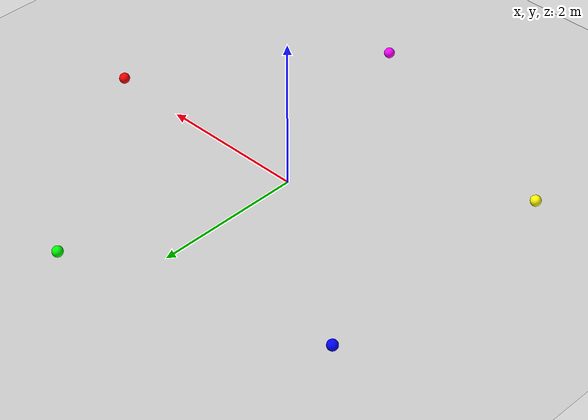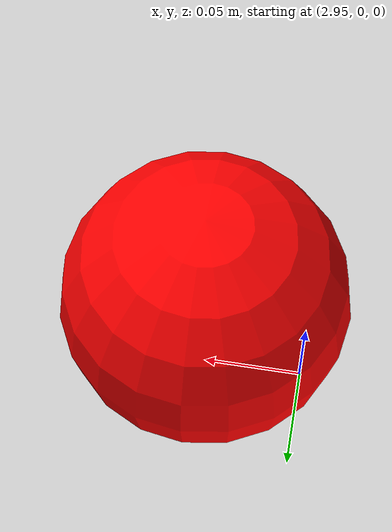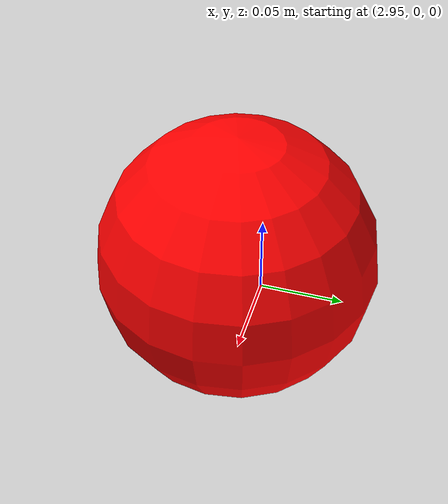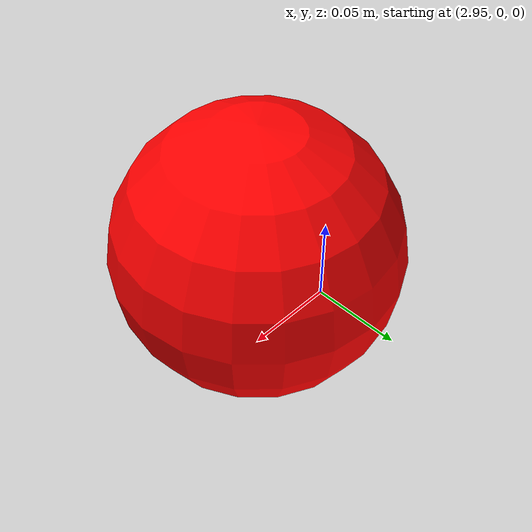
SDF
<?xml version="1.0" ?>
<sdf version="1.10">
  <world name="random_boxes_world">

    <!-- ================= PLUGINS ================= -->
    <plugin filename="gz-sim-physics-system"
            name="gz::sim::systems::Physics"/>

    <plugin filename="gz-sim-user-commands-system"
            name="gz::sim::systems::UserCommands"/>

    <plugin filename="gz-sim-scene-broadcaster-system"
            name="gz::sim::systems::SceneBroadcaster"/>

    <plugin filename="gz-sim-sensors-system"
            name="gz::sim::systems::Sensors">
      <render_engine>ogre2</render_engine>
    </plugin>

    <plugin filename="gz-sim-imu-system"
            name="gz::sim::systems::Imu"/>

    <plugin filename="gz-sim-magnetometer-system"
            name="gz::sim::systems::Magnetometer"/>

    <plugin filename="gz-sim-navsat-system"
            name="gz::sim::systems::NavSat"/>

    <!-- ============ GEOGRAPHIC COORDINATES ============ -->
    <spherical_coordinates>
      <surface_model>EARTH_WGS84</surface_model>
     <latitude_deg>-25.33057507763572</latitude_deg>
     <longitude_deg>-57.51813474688503</longitude_deg>
      <elevation>80.0</elevation>
      <heading_deg>0</heading_deg>
    </spherical_coordinates>

    <!-- ================= PHYSICS ================= -->
    <physics name="1ms" type="ignored">
      <max_step_size>0.001</max_step_size>
      <real_time_factor>1</real_time_factor>
      <real_time_update_rate>1000</real_time_update_rate>
    </physics>

    <gravity>0 0 -9.8</gravity>

    <!-- ================= SCENE ================= -->
    <scene>
      <ambient>0.4 0.4 0.4 1</ambient>
      <background>0.7 0.7 0.7 1</background>
      <shadows>true</shadows>
    </scene>

    <!-- ================= GROUND ================= -->
    <model name="ground_plane">
      <static>true</static>
      <link name="link">
        <collision name="collision">
          <geometry>
            <plane>
              <normal>0 0 1</normal>
              <size>100 100</size>
            </plane>
          </geometry>
        </collision>
        <visual name="visual">
          <geometry>
            <plane>
              <normal>0 0 1</normal>
              <size>100 100</size>
            </plane>
          </geometry>
          <material>
            <diffuse>0.8 0.8 0.8 1</diffuse>
          </material>
        </visual>
      </link>
    </model>

<!-- ================= SPHERES IN PENTAGON ================= -->
    <!-- Sphere radius: 0.07 m -->

    <model name="sphere_01">
      <static>true</static>
      <pose>3 0 0.07 0 0 0</pose>
      <link name="l">
        <collision name="c">
          <geometry><sphere><radius>0.07</radius></sphere></geometry>
        </collision>
        <visual name="v">
          <geometry><sphere><radius>0.07</radius></sphere></geometry>
          <material><ambient>1 0 0 1</ambient><diffuse>1 0 0 1</diffuse></material>
        </visual>
      </link>
    </model>

    <model name="sphere_02">
      <static>true</static>
      <pose>0.93 2.85 0.07 0 0 0</pose>
      <link name="l">
        <collision name="c">
          <geometry><sphere><radius>0.07</radius></sphere></geometry>
        </collision>
        <visual name="v">
          <geometry><sphere><radius>0.07</radius></sphere></geometry>
          <material><ambient>0 1 0 1</ambient><diffuse>0 1 0 1</diffuse></material>
        </visual>
      </link>
    </model>

    <model name="sphere_03">
      <static>true</static>
      <pose>-2.43 1.76 0.07 0 0 0</pose>
      <link name="l">
        <collision name="c">
          <geometry><sphere><radius>0.07</radius></sphere></geometry>
        </collision>
        <visual name="v">
          <geometry><sphere><radius>0.07</radius></sphere></geometry>
          <material><ambient>0 0 1 1</ambient><diffuse>0 0 1 1</diffuse></material>
        </visual>
      </link>
    </model>

    <model name="sphere_04">
      <static>true</static>
      <pose>-2.43 -1.76 0.07 0 0 0</pose>
      <link name="l">
        <collision name="c">
          <geometry><sphere><radius>0.07</radius></sphere></geometry>
        </collision>
        <visual name="v">
          <geometry><sphere><radius>0.07</radius></sphere></geometry>
          <material><ambient>1 1 0 1</ambient><diffuse>1 1 0 1</diffuse></material>
        </visual>
      </link>
    </model>

    <model name="sphere_05">
      <static>true</static>
      <pose>0.93 -2.85 0.07 0 0 0</pose>
      <link name="l">
        <collision name="c">
          <geometry><sphere><radius>0.07</radius></sphere></geometry>
        </collision>
        <visual name="v">
          <geometry><sphere><radius>0.07</radius></sphere></geometry>
          <material><ambient>1 0 1 1</ambient><diffuse>1 0 1 1</diffuse></material>
        </visual>
      </link>
    </model>

    <!-- ================= SUN ================= -->

    <light name="sun" type="directional">
      <pose>0 0 10 0 0 0</pose>
      <cast_shadows>true</cast_shadows>
      <direction>-0.5 0.1 -0.9</direction>
      <diffuse>0.8 0.8 0.8 1</diffuse>
      <specular>0.2 0.2 0.2 1</specular>
    </light>

  </world>
</sdf>
